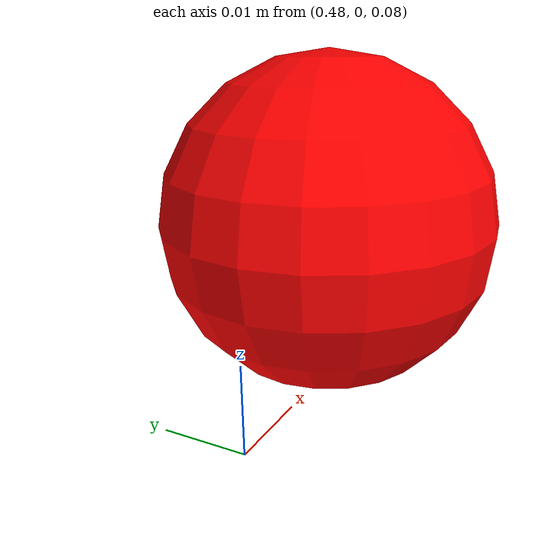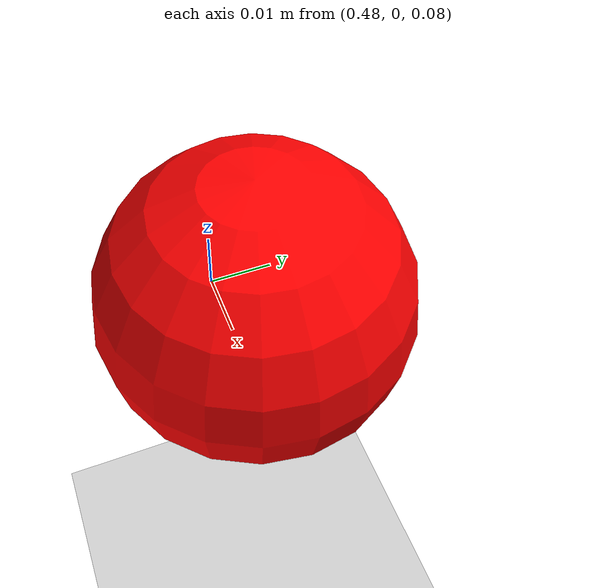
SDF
<?xml version="1.0" ?>
<sdf version="1.4">
  <world name="default">
    <!-- A global light source -->
    <include>
      <uri>model://sun</uri>
    </include>
    <!-- A ground plane -->
    <include>
      <uri>model://ground_plane</uri>
    </include>
    <model name="sphere">
     <link name='base_link'>
            <pose>0.5 0 .1 0 0 0</pose>

        <collision name='collision'>
              <geometry>
                <sphere>
                  <radius>0.02</radius>
                </sphere>
              </geometry>
        </collision>
        <visual name='visual'>
            <geometry>
                <sphere>
                <radius>0.02</radius>
                </sphere>
            </geometry>
            <material>
                <diffuse>1 0 0 1</diffuse>
                            <ambient>1 0 0 1</ambient>
                </material>
            </visual>
        </link>
    </model>
    <gui fullscreen='0'>
      <camera name='user_camera'>
        <pose>0.827303 -0.795002 0.416431 0 0.275643 2.35619</pose>
        <view_controller>orbit</view_controller>
      </camera>
    </gui>
  </world>
</sdf>
